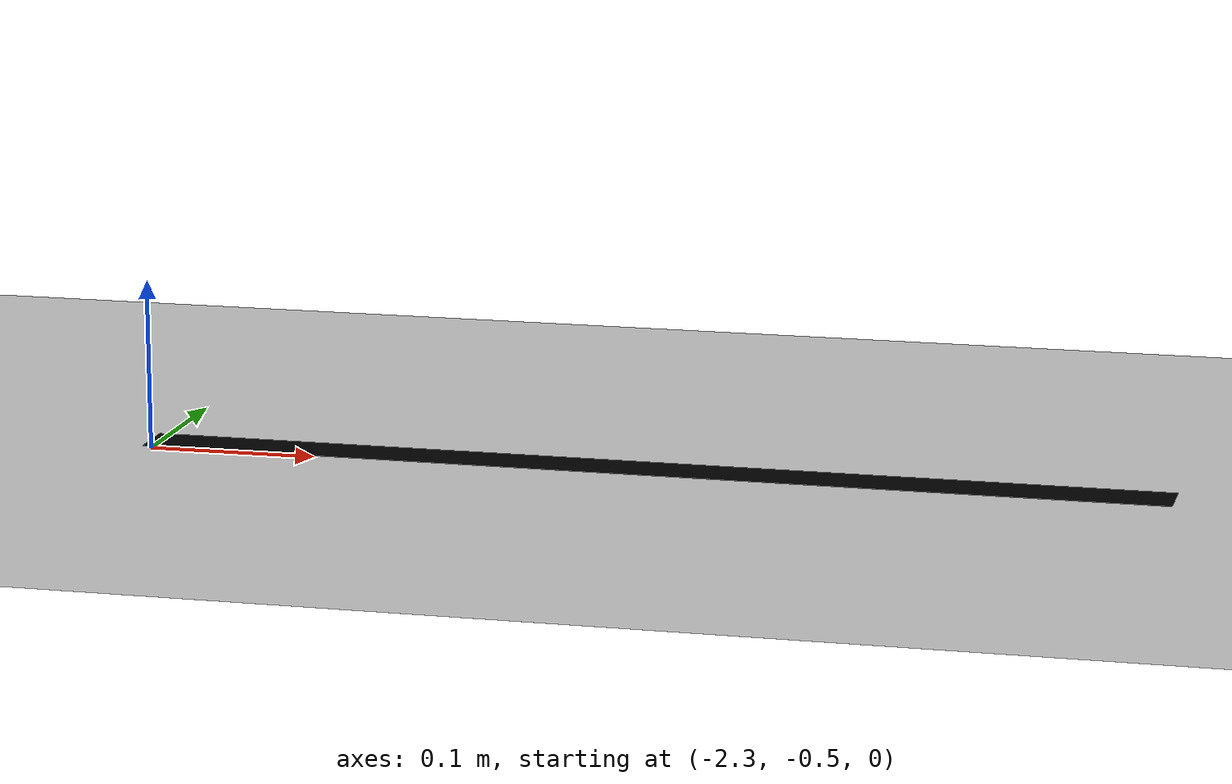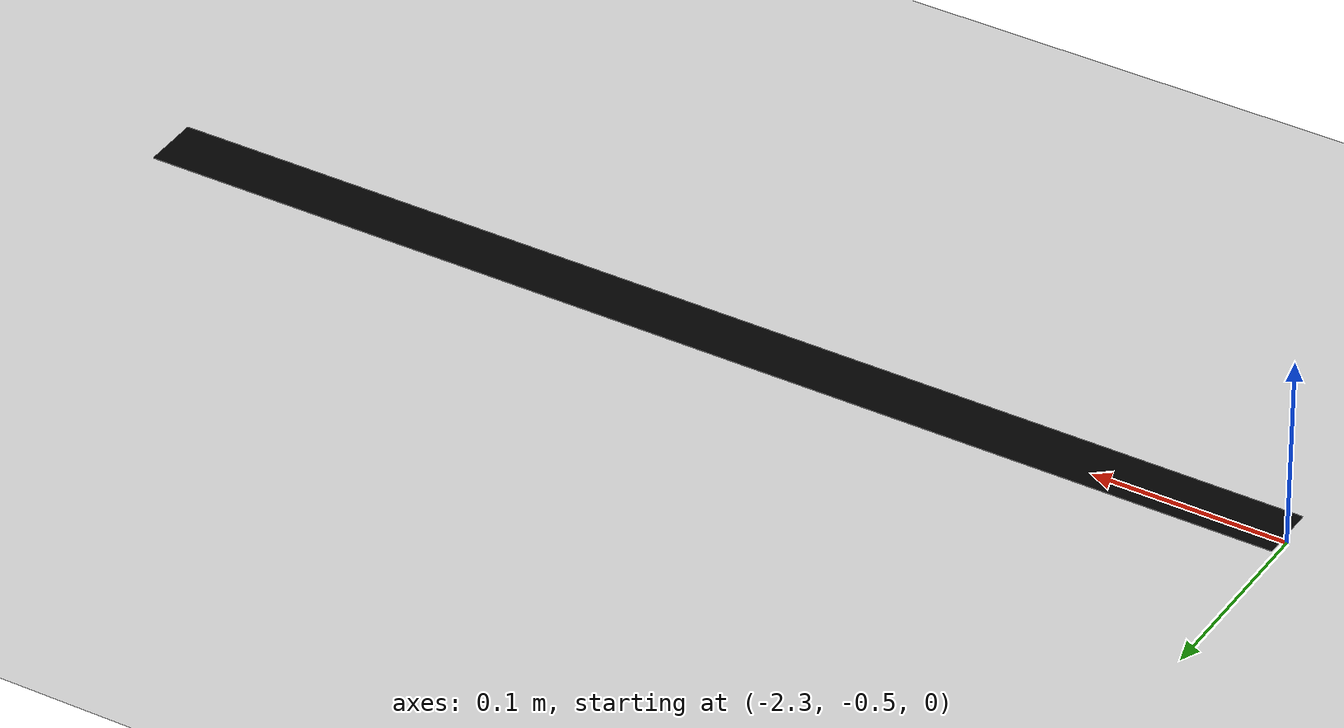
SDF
<?xml version="1.0" ?>
<sdf version="1.6">
  <world name="default">

    <!-- Lighting & ground -->
    <include>
      <uri>model://sun</uri>
    </include>
    <include>
      <uri>model://ground_plane</uri>
    </include>

    <!-- A black line (thin box). Adjust size/pose as you like. -->
    <model name="black_line">
      <static>true</static>
      <!-- slight z offset to avoid z-fighting with the ground -->
      <pose>-2 -0.5 0.005 0 0 0</pose>
      <link name="link">
        <visual name="vis">
          <geometry>
            <!-- length x, width y, height z (meters) -->
            <box><size>0.6 0.03 0.0001</size></box>
          </geometry>
          <material>
            <ambient>0 0 0 1</ambient>
            <diffuse>0 0 0 1</diffuse>
            <specular>0 0 0 1</specular>
            <emissive>0 0 0 1</emissive>
          </material>
          <cast_shadows>false</cast_shadows>
        </visual>
        <collision name="col">
          <geometry>
            <box><size>0.6 0.03 0.0001</size></box>
          </geometry>
          <surface>
            <contact>
              <collide_without_contact>true</collide_without_contact>
            </contact>
          </surface>
        </collision>
      </link>
    </model>

  </world>
</sdf>
